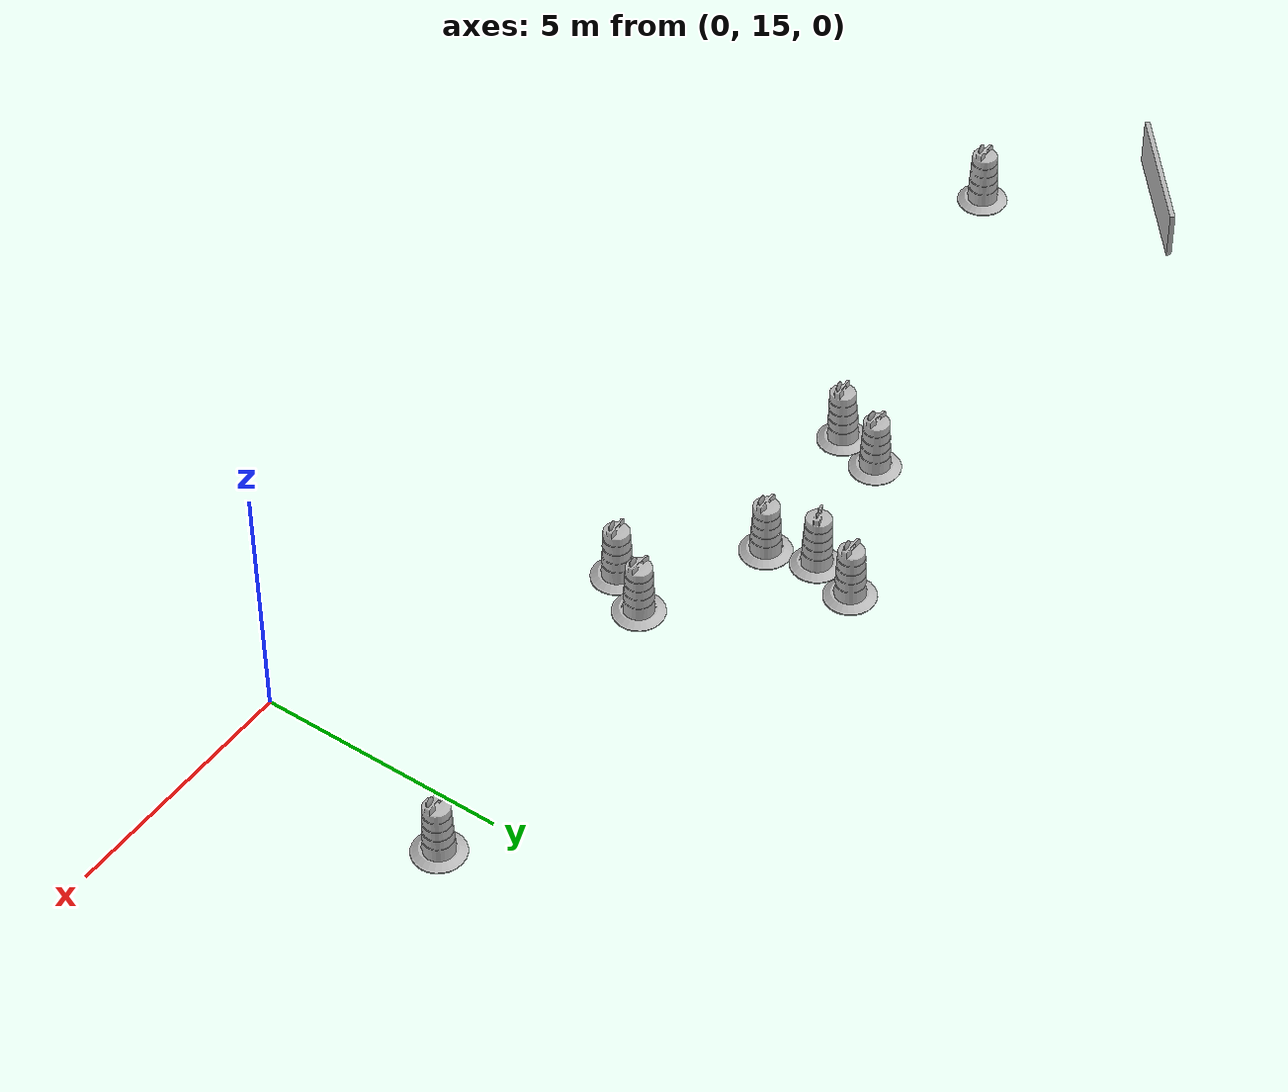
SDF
<sdf version="1.7">
 <world name="default">
  <model name="Construction Barrel_28">
   <link name="link">
    <inertial>
     <pose>0 0 0.4 0 -0 0</pose>
     <mass>500</mass>
     <inertia><ixx>51.2096</ixx><iyy>51.2096</iyy><izz>25</izz><ixy>0</ixy><ixz>0</ixz><iyz>0</iyz></inertia>
    </inertial>
    <collision name="collision">
     <geometry><mesh><uri>model://construction_barrel/meshes/construction_barrel.dae</uri></mesh></geometry>
    </collision>
    <visual name="visual">
     <geometry><mesh><uri>model://construction_barrel/meshes/construction_barrel.dae</uri></mesh></geometry>
    </visual>
    <velocity_decay><linear>0</linear><angular>0</angular></velocity_decay>
   </link>
   <pose>-19.1465 17.9891 -1e-06 5e-06 -3e-06 -0.000862</pose>
   <static>0</static>
  </model>
  <model name="Construction Barrel_29">
   <link name="link">
    <inertial>
     <pose>0 0 0.4 0 -0 0</pose>
     <mass>500</mass>
     <inertia><ixx>51.2096</ixx><iyy>51.2096</iyy><izz>25</izz><ixy>0</ixy><ixz>0</ixz><iyz>0</iyz></inertia>
    </inertial>
    <collision name="collision">
     <geometry><mesh><uri>model://construction_barrel/meshes/construction_barrel.dae</uri></mesh></geometry>
    </collision>
    <visual name="visual">
     <geometry><mesh><uri>model://construction_barrel/meshes/construction_barrel.dae</uri></mesh></geometry>
    </visual>
    <velocity_decay><linear>0</linear><angular>0</angular></velocity_decay>
   </link>
   <pose>-11.5983 19.5964 0.020792 0.038368 -0.014398 0.106444</pose>
   <static>0</static>
  </model>
  <model name="Construction Barrel_30">
   <link name="link">
    <inertial>
     <pose>0 0 0.4 0 -0 0</pose>
     <mass>500</mass>
     <inertia><ixx>51.2096</ixx><iyy>51.2096</iyy><izz>25</izz><ixy>0</ixy><ixz>0</ixz><iyz>0</iyz></inertia>
    </inertial>
    <collision name="collision">
     <geometry><mesh><uri>model://construction_barrel/meshes/construction_barrel.dae</uri></mesh></geometry>
    </collision>
    <visual name="visual">
     <geometry><mesh><uri>model://construction_barrel/meshes/construction_barrel.dae</uri></mesh></geometry>
    </visual>
    <velocity_decay><linear>0</linear><angular>0</angular></velocity_decay>
   </link>
   <pose>-11.3112 20.5132 -2e-06 8e-06 0 -0.121145</pose>
   <static>0</static>
  </model>
  <model name="Construction Barrel_31">
   <link name="link">
    <inertial>
     <pose>0 0 0.4 0 -0 0</pose>
     <mass>500</mass>
     <inertia><ixx>51.2096</ixx><iyy>51.2096</iyy><izz>25</izz><ixy>0</ixy><ixz>0</ixz><iyz>0</iyz></inertia>
    </inertial>
    <collision name="collision">
     <geometry><mesh><uri>model://construction_barrel/meshes/construction_barrel.dae</uri></mesh></geometry>
    </collision>
    <visual name="visual">
     <geometry><mesh><uri>model://construction_barrel/meshes/construction_barrel.dae</uri></mesh></geometry>
    </visual>
    <velocity_decay><linear>0</linear><angular>0</angular></velocity_decay>
   </link>
   <pose>-8.1923 22.0144 -0.000124 0.000412 -0.000142 -0.002432</pose>
   <static>0</static>
  </model>
  <model name="Construction Barrel_32">
   <link name="link">
    <inertial>
     <pose>0 0 0.4 0 -0 0</pose>
     <mass>500</mass>
     <inertia><ixx>51.2096</ixx><iyy>51.2096</iyy><izz>25</izz><ixy>0</ixy><ixz>0</ixz><iyz>0</iyz></inertia>
    </inertial>
    <collision name="collision">
     <geometry><mesh><uri>model://construction_barrel/meshes/construction_barrel.dae</uri></mesh></geometry>
    </collision>
    <visual name="visual">
     <geometry><mesh><uri>model://construction_barrel/meshes/construction_barrel.dae</uri></mesh></geometry>
    </visual>
    <velocity_decay><linear>0</linear><angular>0</angular></velocity_decay>
   </link>
   <pose>1.04155 19.6178 -2e-06 7e-06 -4e-06 -0.000754</pose>
   <static>0</static>
  </model>
  <model name="Construction Barrel_33">
   <link name="link">
    <inertial>
     <pose>0 0 0.4 0 -0 0</pose>
     <mass>500</mass>
     <inertia><ixx>51.2096</ixx><iyy>51.2096</iyy><izz>25</izz><ixy>0</ixy><ixz>0</ixz><iyz>0</iyz></inertia>
    </inertial>
    <collision name="collision">
     <geometry><mesh><uri>model://construction_barrel/meshes/construction_barrel.dae</uri></mesh></geometry>
    </collision>
    <visual name="visual">
     <geometry><mesh><uri>model://construction_barrel/meshes/construction_barrel.dae</uri></mesh></geometry>
    </visual>
    <velocity_decay><linear>0</linear><angular>0</angular></velocity_decay>
   </link>
   <pose>-6.14091 18.2154 -2.9e-05 -3.8e-05 2.4e-05 0.084371</pose>
   <static>0</static>
  </model>
  <model name="Construction Barrel_34">
   <link name="link">
    <inertial>
     <pose>0 0 0.4 0 -0 0</pose>
     <mass>500</mass>
     <inertia><ixx>51.2096</ixx><iyy>51.2096</iyy><izz>25</izz><ixy>0</ixy><ixz>0</ixz><iyz>0</iyz></inertia>
    </inertial>
    <collision name="collision">
     <geometry><mesh><uri>model://construction_barrel/meshes/construction_barrel.dae</uri></mesh></geometry>
    </collision>
    <visual name="visual">
     <geometry><mesh><uri>model://construction_barrel/meshes/construction_barrel.dae</uri></mesh></geometry>
    </visual>
    <velocity_decay><linear>0</linear><angular>0</angular></velocity_decay>
   </link>
   <pose>-8.48772 21.071 0.020066 -0.011721 -0.037618 0.383499</pose>
   <static>0</static>
  </model>
  <model name="Construction Barrel_35">
   <link name="link">
    <inertial>
     <pose>0 0 0.4 0 -0 0</pose>
     <mass>500</mass>
     <inertia><ixx>51.2096</ixx><iyy>51.2096</iyy><izz>25</izz><ixy>0</ixy><ixz>0</ixz><iyz>0</iyz></inertia>
    </inertial>
    <collision name="collision">
     <geometry><mesh><uri>model://construction_barrel/meshes/construction_barrel.dae</uri></mesh></geometry>
    </collision>
    <visual name="visual">
     <geometry><mesh><uri>model://construction_barrel/meshes/construction_barrel.dae</uri></mesh></geometry>
    </visual>
    <velocity_decay><linear>0</linear><angular>0</angular></velocity_decay>
   </link>
   <pose>-8.26314 20.0876 -2.9e-05 -1.6e-05 -1.7e-05 -0.020164</pose>
   <static>0</static>
  </model>
  <model name="Construction Barrel_36">
   <link name="link">
    <inertial>
     <pose>0 0 0.4 0 -0 0</pose>
     <mass>500</mass>
     <inertia><ixx>51.2096</ixx><iyy>51.2096</iyy><izz>25</izz><ixy>0</ixy><ixz>0</ixz><iyz>0</iyz></inertia>
    </inertial>
    <collision name="collision">
     <geometry><mesh><uri>model://construction_barrel/meshes/construction_barrel.dae</uri></mesh></geometry>
    </collision>
    <visual name="visual">
     <geometry><mesh><uri>model://construction_barrel/meshes/construction_barrel.dae</uri></mesh></geometry>
    </visual>
    <velocity_decay><linear>0</linear><angular>0</angular></velocity_decay>
   </link>
   <pose>-5.62403 19.0769 0.0118 -0.021266 0.009514 -0.079173</pose>
   <static>0</static>
  </model>
  <model name="barricade_4">
   <static>1</static>
   <pose>-21 21 0.5 0 -0 0.7</pose>
   <link name="link">
    <collision name="collision"><geometry><box><size>3 0.1 1</size></box></geometry></collision>
    <visual name="visual"><geometry><box><size>3 0.1 1</size></box></geometry></visual>
   </link>
  </model>
 </world>
</sdf>
